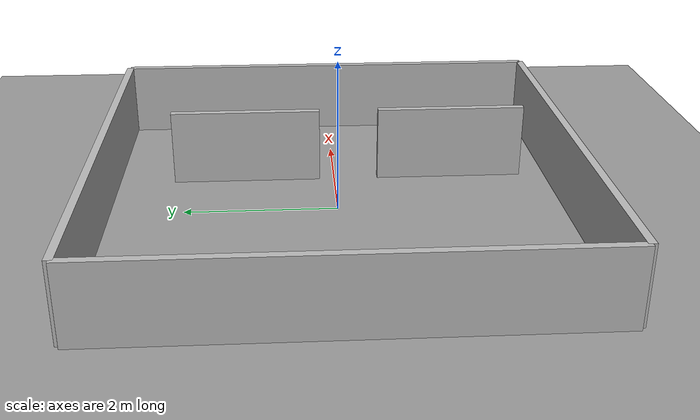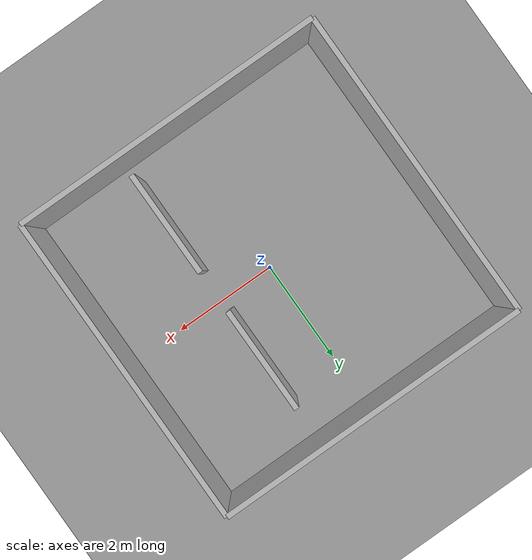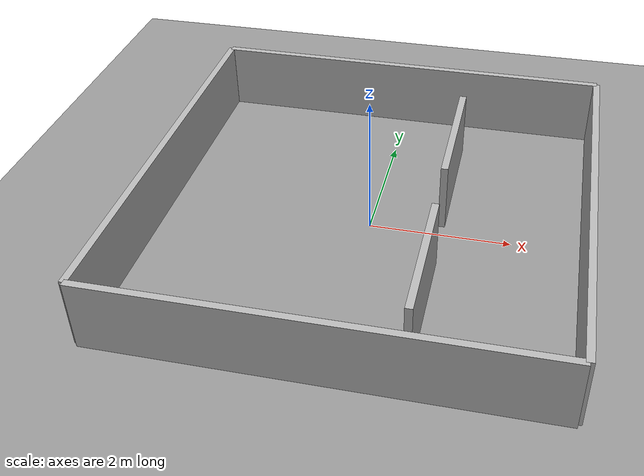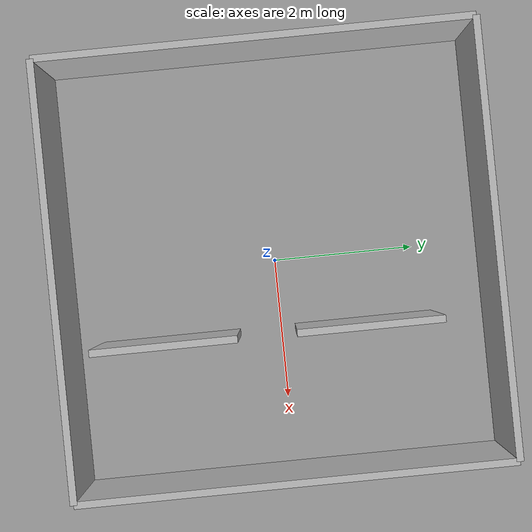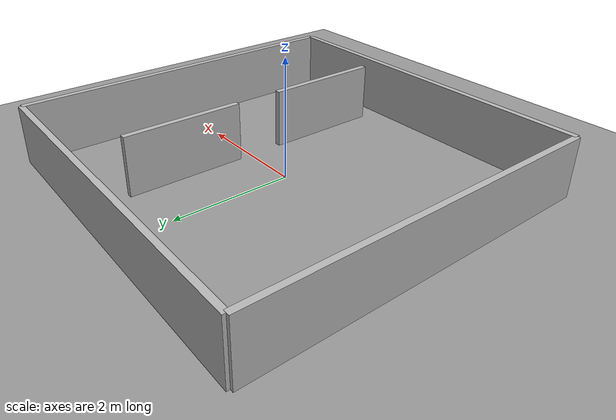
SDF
<?xml version="1.0"?>
<sdf version="1.9">
  <world name="nano_room">
    <physics name="1ms" type="ignored">
      <max_step_size>0.001</max_step_size>
      <real_time_factor>1.0</real_time_factor>
    </physics>
    <plugin filename="gz-sim-physics-system" name="gz::sim::systems::Physics"/>
    <plugin filename="gz-sim-sensors-system" name="gz::sim::systems::Sensors">
      <render_engine>ogre2</render_engine>
    </plugin>
    <plugin filename="gz-sim-user-commands-system" name="gz::sim::systems::UserCommands"/>
    <plugin filename="gz-sim-scene-broadcaster-system" name="gz::sim::systems::SceneBroadcaster"/>
    <plugin filename="gz-sim-imu-system" name="gz::sim::systems::Imu"/>

    <light type="directional" name="sun">
      <cast_shadows>true</cast_shadows>
      <pose>0 0 10 0 0 0</pose>
      <diffuse>0.8 0.8 0.8 1</diffuse>
      <direction>-0.5 0.1 -0.9</direction>
    </light>

    <model name="ground_plane">
      <static>true</static>
      <link name="link">
        <collision name="collision">
          <geometry><plane><normal>0 0 1</normal><size>20 20</size></plane></geometry>
        </collision>
        <visual name="visual">
          <geometry><plane><normal>0 0 1</normal><size>20 20</size></plane></geometry>
          <material><ambient>0.6 0.6 0.6 1</ambient><diffuse>0.6 0.6 0.6 1</diffuse></material>
        </visual>
      </link>
    </model>

    <!-- xyz size="length width height", centred at pose -->
    <model name="wall_north"><static>true</static><pose>0 3 0.5 0 0 0</pose>
      <link name="link"><collision name="c"><geometry><box><size>6 0.1 1</size></box></geometry></collision>
      <visual name="v"><geometry><box><size>6 0.1 1</size></box></geometry></visual></link></model>
    <model name="wall_south"><static>true</static><pose>0 -3 0.5 0 0 0</pose>
      <link name="link"><collision name="c"><geometry><box><size>6 0.1 1</size></box></geometry></collision>
      <visual name="v"><geometry><box><size>6 0.1 1</size></box></geometry></visual></link></model>
    <model name="wall_east"><static>true</static><pose>3 0 0.5 0 0 0</pose>
      <link name="link"><collision name="c"><geometry><box><size>0.1 6 1</size></box></geometry></collision>
      <visual name="v"><geometry><box><size>0.1 6 1</size></box></geometry></visual></link></model>
    <model name="wall_west"><static>true</static><pose>-3 0 0.5 0 0 0</pose>
      <link name="link"><collision name="c"><geometry><box><size>0.1 6 1</size></box></geometry></collision>
      <visual name="v"><geometry><box><size>0.1 6 1</size></box></geometry></visual></link></model>

    <!-- interior partition with a gap (a doorway), so it isn't just a bare box room. -->
    <model name="wall_mid_a"><static>true</static><pose>1 1.2 0.5 0 0 0</pose>
      <link name="link"><collision name="c"><geometry><box><size>0.1 2 1</size></box></geometry></collision>
      <visual name="v"><geometry><box><size>0.1 2 1</size></box></geometry></visual></link></model>
    <model name="wall_mid_b"><static>true</static><pose>1 -1.6 0.5 0 0 0</pose>
      <link name="link"><collision name="c"><geometry><box><size>0.1 2 1</size></box></geometry></collision>
      <visual name="v"><geometry><box><size>0.1 2 1</size></box></geometry></visual></link></model>
  </world>
</sdf>
